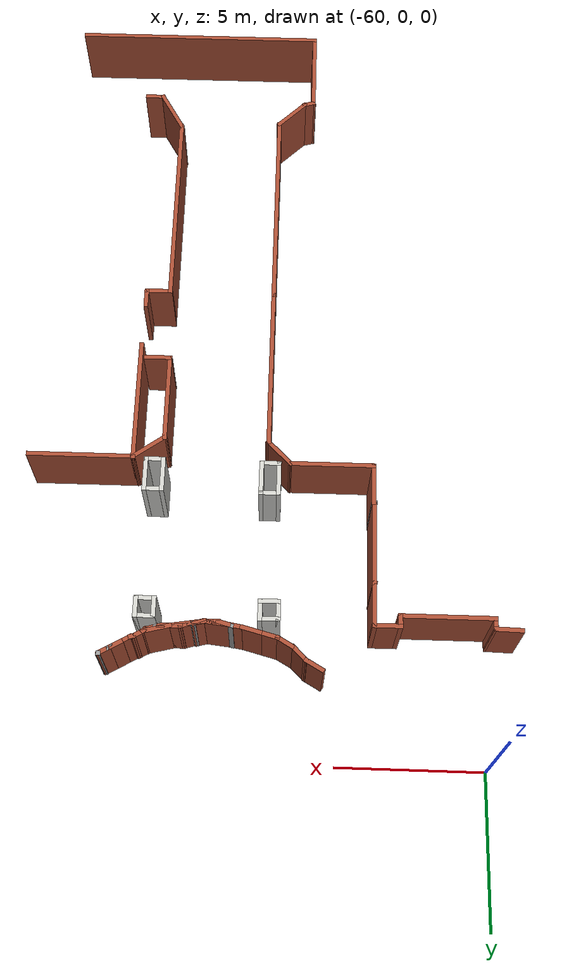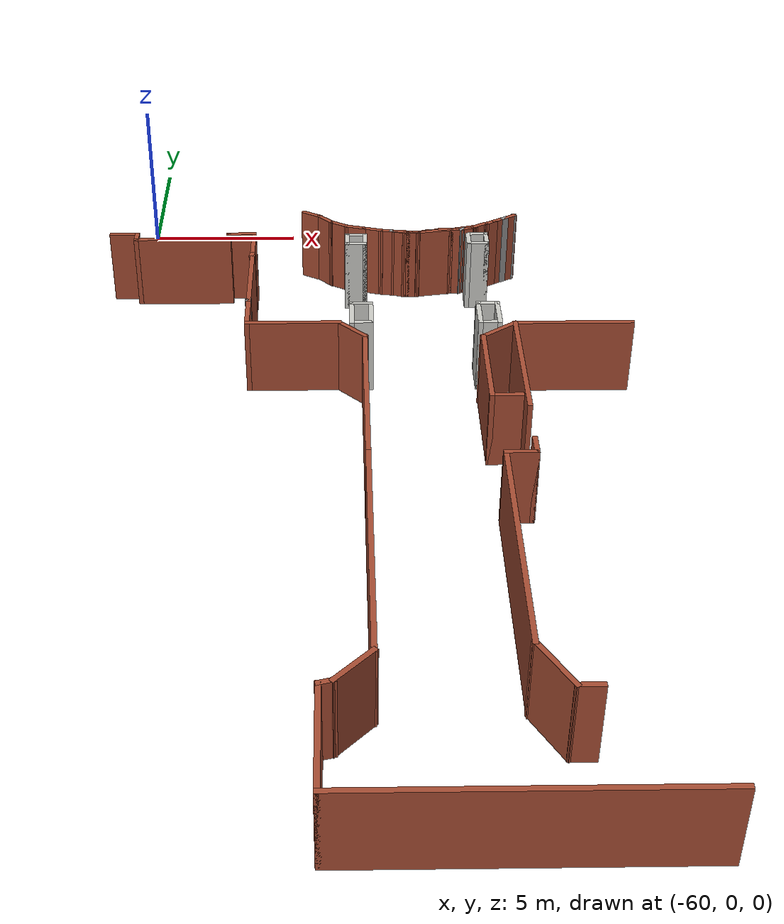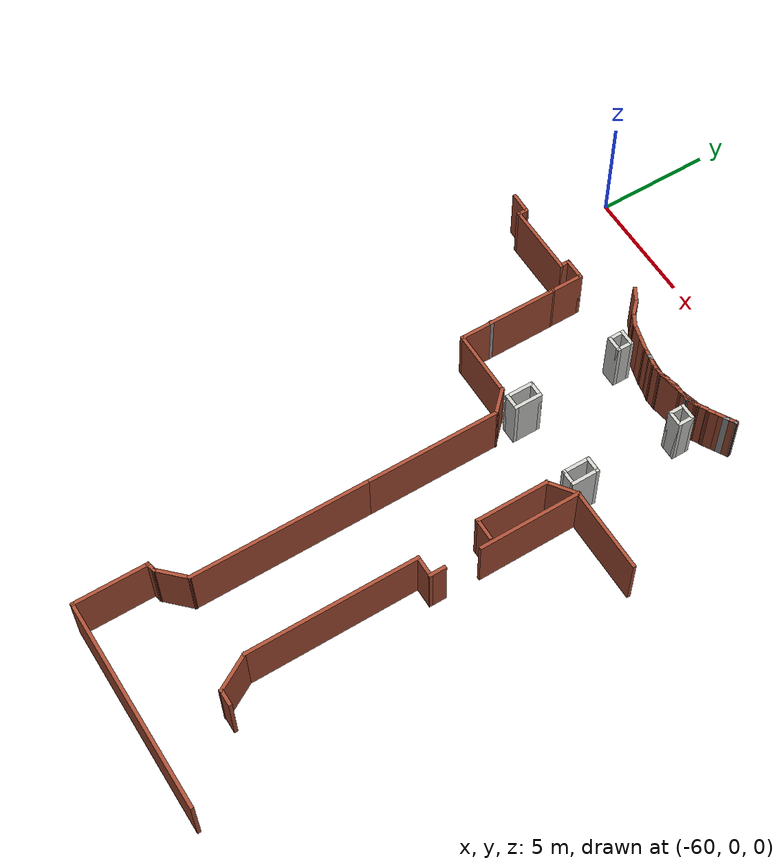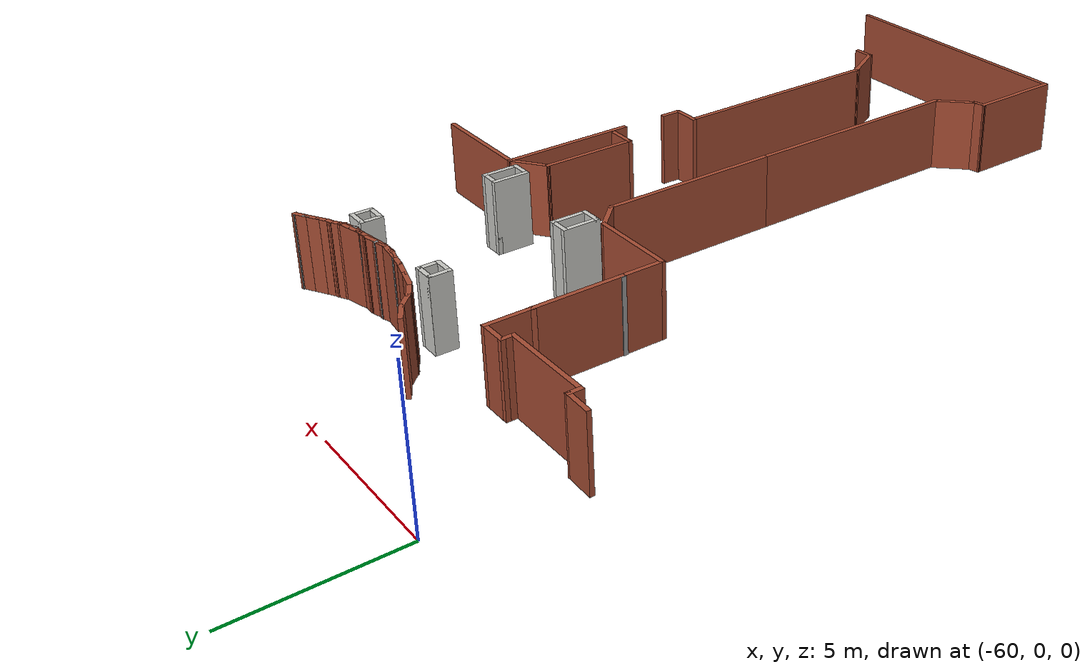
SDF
<sdf version="1.7">
 <model name="Planta1_TD">
  <pose>-6.73335 -7.75071 0 0 -0 0</pose>
  <link name="Wall_103">
   <collision name="Wall_103_Collision">
    <geometry><box><size>0.25 0.15 2.5</size></box></geometry>
    <pose>0 0 1.25 0 -0 0</pose>
   </collision>
   <visual name="Wall_103_Visual">
    <pose>0 0 1.25 0 -0 0</pose>
    <geometry><box><size>0.25 0.15 2.5</size></box></geometry>
    <material>
     <script><uri>file://media/materials/scripts/gazebo.material</uri><name>Gazebo/Bricks</name></script>
     <ambient>1 1 1 1</ambient>
    </material>
    <meta><layer>0</layer></meta>
   </visual>
   <pose>-41.9705 3.97081 0 0 -0 0.785398</pose>
  </link>
  <link name="Wall_104">
   <collision name="Wall_104_Collision">
    <geometry><box><size>0.5 0.15 2.5</size></box></geometry>
    <pose>0 0 1.25 0 -0 0</pose>
   </collision>
   <visual name="Wall_104_Visual">
    <pose>0 0 1.25 0 -0 0</pose>
    <geometry><box><size>0.5 0.15 2.5</size></box></geometry>
    <material>
     <script><uri>file://media/materials/scripts/gazebo.material</uri><name>Gazebo/Bricks</name></script>
     <ambient>1 1 1 1</ambient>
    </material>
    <meta><layer>0</layer></meta>
   </visual>
   <pose>-41.7836 4.09367 0 0 -0 0.523599</pose>
  </link>
  <link name="Wall_105">
   <collision name="Wall_105_Collision">
    <geometry><box><size>0.25 0.15 2.5</size></box></geometry>
    <pose>0 0 1.25 0 -0 0</pose>
   </collision>
   <visual name="Wall_105_Visual">
    <pose>0 0 1.25 0 -0 0</pose>
    <geometry><box><size>0.25 0.15 2.5</size></box></geometry>
    <material>
     <script><uri>file://media/materials/scripts/gazebo.material</uri><name>Gazebo/Bricks</name></script>
     <ambient>1 1 1 1</ambient>
    </material>
    <meta><layer>0</layer></meta>
   </visual>
   <pose>-41.5837 4.19411 0 0 -0 0.261799</pose>
  </link>
  <link name="Wall_106">
   <collision name="Wall_106_Collision">
    <geometry><box><size>0.5 0.15 2.5</size></box></geometry>
    <pose>0 0 1.25 0 -0 0</pose>
   </collision>
   <visual name="Wall_106_Visual">
    <pose>0 0 1.25 0 -0 0</pose>
    <geometry><box><size>0.5 0.15 2.5</size></box></geometry>
    <material>
     <script><uri>file://media/materials/scripts/gazebo.material</uri><name>Gazebo/Bricks</name></script>
     <ambient>1 1 1 1</ambient>
    </material>
    <meta><layer>0</layer></meta>
   </visual>
   <pose>-41.3839 4.29455 0 0 -0 0.523599</pose>
  </link>
  <link name="Wall_107">
   <collision name="Wall_107_Collision">
    <geometry><box><size>0.5 0.15 2.5</size></box></geometry>
    <pose>0 0 1.25 0 -0 0</pose>
   </collision>
   <visual name="Wall_107_Visual">
    <pose>0 0 1.25 0 -0 0</pose>
    <geometry><box><size>0.5 0.15 2.5</size></box></geometry>
    <material>
     <script><uri>file://media/materials/scripts/gazebo.material</uri><name>Gazebo/Bricks</name></script>
     <ambient>1 1 1 1</ambient>
    </material>
    <meta><layer>0</layer></meta>
   </visual>
   <pose>-41.0808 4.46955 0 0 -0 0.523599</pose>
  </link>
  <link name="Wall_108">
   <collision name="Wall_108_Collision">
    <geometry><box><size>0.25 0.15 2.5</size></box></geometry>
    <pose>0 0 1.25 0 -0 0</pose>
   </collision>
   <visual name="Wall_108_Visual">
    <pose>0 0 1.25 0 -0 0</pose>
    <geometry><box><size>0.25 0.15 2.5</size></box></geometry>
    <material>
     <script><uri>file://media/materials/scripts/gazebo.material</uri><name>Gazebo/Grey</name></script>
     <ambient>1 1 1 1</ambient>
    </material>
    <meta><layer>0</layer></meta>
   </visual>
   <pose>-40.8859 4.58205 0 0 -0 0.523599</pose>
  </link>
  <link name="Wall_109">
   <collision name="Wall_109_Collision">
    <geometry><box><size>0.5 0.15 2.5</size></box></geometry>
    <pose>0 0 1.25 0 -0 0</pose>
   </collision>
   <visual name="Wall_109_Visual">
    <pose>0 0 1.25 0 -0 0</pose>
    <geometry><box><size>0.5 0.15 2.5</size></box></geometry>
    <material>
     <script><uri>file://media/materials/scripts/gazebo.material</uri><name>Gazebo/Bricks</name></script>
     <ambient>1 1 1 1</ambient>
    </material>
    <meta><layer>0</layer></meta>
   </visual>
   <pose>-40.6911 4.69455 0 0 -0 0.523599</pose>
  </link>
  <link name="Wall_110">
   <collision name="Wall_110_Collision">
    <geometry><box><size>0.15 0.15 2.5</size></box></geometry>
    <pose>0 0 1.25 0 -0 0</pose>
   </collision>
   <visual name="Wall_110_Visual">
    <pose>0 0 1.25 0 -0 0</pose>
    <geometry><box><size>0.15 0.15 2.5</size></box></geometry>
    <material>
     <script><uri>file://media/materials/scripts/gazebo.material</uri><name>Gazebo/Grey</name></script>
     <ambient>1 1 1 1</ambient>
    </material>
    <meta><layer>0</layer></meta>
   </visual>
   <pose>-40.5395 4.78205 0 0 -0 0</pose>
  </link>
  <link name="Wall_147">
   <collision name="Wall_147_Collision">
    <geometry><box><size>0.943263 0.15 2.5</size></box></geometry>
    <pose>0 0 1.25 0 -0 0</pose>
   </collision>
   <visual name="Wall_147_Visual">
    <pose>0 0 1.25 0 -0 0</pose>
    <geometry><box><size>0.943263 0.15 2.5</size></box></geometry>
    <material>
     <script><uri>file://media/materials/scripts/gazebo.material</uri><name>Gazebo/Bricks</name></script>
     <ambient>1 1 1 1</ambient>
    </material>
    <meta><layer>0</layer></meta>
   </visual>
   <pose>-44.3007 3.65899 0 0 -0 -0.114445</pose>
  </link>
  <link name="Wall_148">
   <collision name="Wall_148_Collision">
    <geometry><box><size>1.29063 0.15 2.5</size></box></geometry>
    <pose>0 0 1.25 0 -0 0</pose>
   </collision>
   <visual name="Wall_148_Visual">
    <pose>0 0 1.25 0 -0 0</pose>
    <geometry><box><size>1.29063 0.15 2.5</size></box></geometry>
    <material>
     <script><uri>file://media/materials/scripts/gazebo.material</uri><name>Gazebo/Bricks</name></script>
     <ambient>1 1 1 1</ambient>
    </material>
    <meta><layer>0</layer></meta>
   </visual>
   <pose>-43.3436 3.70428 0 0 -0 0.159512</pose>
  </link>
  <link name="Wall_149">
   <collision name="Wall_149_Collision">
    <geometry><box><size>1.02139 0.15 2.5</size></box></geometry>
    <pose>0 0 1.25 0 -0 0</pose>
   </collision>
   <visual name="Wall_149_Visual">
    <pose>0 0 1.25 0 -0 0</pose>
    <geometry><box><size>1.02139 0.15 2.5</size></box></geometry>
    <material>
     <script><uri>file://media/materials/scripts/gazebo.material</uri><name>Gazebo/Bricks</name></script>
     <ambient>1 1 1 1</ambient>
    </material>
    <meta><layer>0</layer></meta>
   </visual>
   <pose>-42.3578 3.90052 0 0 -0 0.244924</pose>
  </link>
  <link name="Wall_153">
   <collision name="Wall_153_Collision">
    <geometry><box><size>0.75 0.15 2.5</size></box></geometry>
    <pose>0 0 1.25 0 -0 0</pose>
   </collision>
   <visual name="Wall_153_Visual">
    <pose>0 0 1.25 0 -0 0</pose>
    <geometry><box><size>0.75 0.15 2.5</size></box></geometry>
    <material>
     <script><uri>file://media/materials/scripts/gazebo.material</uri><name>Gazebo/Bricks</name></script>
     <ambient>1 1 1 1</ambient>
    </material>
    <meta><layer>0</layer></meta>
   </visual>
   <pose>-47.5103 4.96389 0 0 -0 -0.523599</pose>
  </link>
  <link name="Wall_154">
   <collision name="Wall_154_Collision">
    <geometry><box><size>0.75 0.15 2.5</size></box></geometry>
    <pose>0 0 1.25 0 -0 0</pose>
   </collision>
   <visual name="Wall_154_Visual">
    <pose>0 0 1.25 0 -0 0</pose>
    <geometry><box><size>0.75 0.15 2.5</size></box></geometry>
    <material>
     <script><uri>file://media/materials/scripts/gazebo.material</uri><name>Gazebo/Bricks</name></script>
     <ambient>1 1 1 1</ambient>
    </material>
    <meta><layer>0</layer></meta>
   </visual>
   <pose>-47.0383 4.60175 0 0 -0 -0.785398</pose>
  </link>
  <link name="Wall_155">
   <collision name="Wall_155_Collision">
    <geometry><box><size>0.75 0.15 2.5</size></box></geometry>
    <pose>0 0 1.25 0 -0 0</pose>
   </collision>
   <visual name="Wall_155_Visual">
    <pose>0 0 1.25 0 -0 0</pose>
    <geometry><box><size>0.75 0.15 2.5</size></box></geometry>
    <material>
     <script><uri>file://media/materials/scripts/gazebo.material</uri><name>Gazebo/Bricks</name></script>
     <ambient>1 1 1 1</ambient>
    </material>
    <meta><layer>0</layer></meta>
   </visual>
   <pose>-46.5664 4.23962 0 0 -0 -0.523599</pose>
  </link>
  <link name="Wall_156">
   <collision name="Wall_156_Collision">
    <geometry><box><size>0.75 0.15 2.5</size></box></geometry>
    <pose>0 0 1.25 0 -0 0</pose>
   </collision>
   <visual name="Wall_156_Visual">
    <pose>0 0 1.25 0 -0 0</pose>
    <geometry><box><size>0.75 0.15 2.5</size></box></geometry>
    <material>
     <script><uri>file://media/materials/scripts/gazebo.material</uri><name>Gazebo/Bricks</name></script>
     <ambient>1 1 1 1</ambient>
    </material>
    <meta><layer>0</layer></meta>
   </visual>
   <pose>-46.0168 4.01197 0 0 -0 -0.261799</pose>
  </link>
  <link name="Wall_157">
   <collision name="Wall_157_Collision">
    <geometry><box><size>0.75 0.15 2.5</size></box></geometry>
    <pose>0 0 1.25 0 -0 0</pose>
   </collision>
   <visual name="Wall_157_Visual">
    <pose>0 0 1.25 0 -0 0</pose>
    <geometry><box><size>0.75 0.15 2.5</size></box></geometry>
    <material>
     <script><uri>file://media/materials/scripts/gazebo.material</uri><name>Gazebo/Bricks</name></script>
     <ambient>1 1 1 1</ambient>
    </material>
    <meta><layer>0</layer></meta>
   </visual>
   <pose>-45.4372 3.85668 0 0 -0 -0.261799</pose>
  </link>
  <link name="Wall_158">
   <collision name="Wall_158_Collision">
    <geometry><box><size>0.608853 0.15 2.5</size></box></geometry>
    <pose>0 0 1.25 0 -0 0</pose>
   </collision>
   <visual name="Wall_158_Visual">
    <pose>0 0 1.25 0 -0 0</pose>
    <geometry><box><size>0.608853 0.15 2.5</size></box></geometry>
    <material>
     <script><uri>file://media/materials/scripts/gazebo.material</uri><name>Gazebo/Bricks</name></script>
     <ambient>1 1 1 1</ambient>
    </material>
    <meta><layer>0</layer></meta>
   </visual>
   <pose>-44.9211 3.74166 0 0 -0 -0.163648</pose>
  </link>
  <link name="Wall_2">
   <collision name="Wall_2_Collision">
    <geometry><box><size>4.5 0.15 2.5</size></box></geometry>
    <pose>0 0 1.25 0 -0 0</pose>
   </collision>
   <visual name="Wall_2_Visual">
    <pose>0 0 1.25 0 -0 0</pose>
    <geometry><box><size>4.5 0.15 2.5</size></box></geometry>
    <material>
     <script><uri>file://media/materials/scripts/gazebo.material</uri><name>Gazebo/Bricks</name></script>
     <ambient>1 1 1 1</ambient>
    </material>
    <meta><layer>0</layer></meta>
   </visual>
   <pose>-41.1626 -4.33103 0 0 -0 1.5708</pose>
  </link>
  <link name="Wall_207">
   <collision name="Wall_207_Collision">
    <geometry><box><size>1.25 0.15 2.5</size></box></geometry>
    <pose>0 0 1.25 0 -0 0</pose>
   </collision>
   <visual name="Wall_207_Visual">
    <pose>0 0 1.25 0 -0 0</pose>
    <geometry><box><size>1.25 0.15 2.5</size></box></geometry>
    <material>
     <script><uri>file://media/materials/scripts/gazebo.material</uri><name>Gazebo/CeilingTiled</name></script>
     <ambient>1 1 1 1</ambient>
    </material>
    <meta><layer>0</layer></meta>
   </visual>
   <pose>-42.2198 -1.5338 0 0 -0 -1.5708</pose>
  </link>
  <link name="Wall_208">
   <collision name="Wall_208_Collision">
    <geometry><box><size>0.75 0.15 2.5</size></box></geometry>
    <pose>0 0 1.25 0 -0 0</pose>
   </collision>
   <visual name="Wall_208_Visual">
    <pose>0 0 1.25 0 -0 0</pose>
    <geometry><box><size>0.75 0.15 2.5</size></box></geometry>
    <material>
     <script><uri>file://media/materials/scripts/gazebo.material</uri><name>Gazebo/CeilingTiled</name></script>
     <ambient>1 1 1 1</ambient>
    </material>
    <meta><layer>0</layer></meta>
   </visual>
   <pose>-41.9198 -2.0838 0 0 -0 0</pose>
  </link>
  <link name="Wall_209">
   <collision name="Wall_209_Collision">
    <geometry><box><size>1.25 0.15 2.5</size></box></geometry>
    <pose>0 0 1.25 0 -0 0</pose>
   </collision>
   <visual name="Wall_209_Visual">
    <pose>0 0 1.25 0 -0 0</pose>
    <geometry><box><size>1.25 0.15 2.5</size></box></geometry>
    <material>
     <script><uri>file://media/materials/scripts/gazebo.material</uri><name>Gazebo/CeilingTiled</name></script>
     <ambient>1 1 1 1</ambient>
    </material>
    <meta><layer>0</layer></meta>
   </visual>
   <pose>-41.6198 -1.5338 0 0 -0 1.5708</pose>
  </link>
  <link name="Wall_210">
   <collision name="Wall_210_Collision">
    <geometry><box><size>0.75 0.15 2.5</size></box></geometry>
    <pose>0 0 1.25 0 -0 0</pose>
   </collision>
   <visual name="Wall_210_Visual">
    <pose>0 0 1.25 0 -0 0</pose>
    <geometry><box><size>0.75 0.15 2.5</size></box></geometry>
    <material>
     <script><uri>file://media/materials/scripts/gazebo.material</uri><name>Gazebo/CeilingTiled</name></script>
     <ambient>1 1 1 1</ambient>
    </material>
    <meta><layer>0</layer></meta>
   </visual>
   <pose>-41.9198 -0.983803 0 0 -0 3.14159</pose>
  </link>
  <link name="Wall_212">
   <collision name="Wall_212_Collision">
    <geometry><box><size>0.75 0.15 2.5</size></box></geometry>
    <pose>0 0 1.25 0 -0 0</pose>
   </collision>
   <visual name="Wall_212_Visual">
    <pose>0 0 1.25 0 -0 0</pose>
    <geometry><box><size>0.75 0.15 2.5</size></box></geometry>
    <material>
     <script><uri>file://media/materials/scripts/gazebo.material</uri><name>Gazebo/CeilingTiled</name></script>
     <ambient>1 1 1 1</ambient>
    </material>
    <meta><layer>0</layer></meta>
   </visual>
   <pose>-45.8945 -0.944253 0 0 -0 0</pose>
  </link>
  <link name="Wall_213">
   <collision name="Wall_213_Collision">
    <geometry><box><size>1.25 0.15 2.5</size></box></geometry>
    <pose>0 0 1.25 0 -0 0</pose>
   </collision>
   <visual name="Wall_213_Visual">
    <pose>0 0 1.25 0 -0 0</pose>
    <geometry><box><size>1.25 0.15 2.5</size></box></geometry>
    <material>
     <script><uri>file://media/materials/scripts/gazebo.material</uri><name>Gazebo/CeilingTiled</name></script>
     <ambient>1 1 1 1</ambient>
    </material>
    <meta><layer>0</layer></meta>
   </visual>
   <pose>-45.5945 -1.49425 0 0 -0 -1.5708</pose>
  </link>
  <link name="Wall_214">
   <collision name="Wall_214_Collision">
    <geometry><box><size>0.75 0.15 2.5</size></box></geometry>
    <pose>0 0 1.25 0 -0 0</pose>
   </collision>
   <visual name="Wall_214_Visual">
    <pose>0 0 1.25 0 -0 0</pose>
    <geometry><box><size>0.75 0.15 2.5</size></box></geometry>
    <material>
     <script><uri>file://media/materials/scripts/gazebo.material</uri><name>Gazebo/CeilingTiled</name></script>
     <ambient>1 1 1 1</ambient>
    </material>
    <meta><layer>0</layer></meta>
   </visual>
   <pose>-45.8945 -2.04425 0 0 -0 3.14159</pose>
  </link>
  <link name="Wall_215">
   <collision name="Wall_215_Collision">
    <geometry><box><size>1.25 0.15 2.5</size></box></geometry>
    <pose>0 0 1.25 0 -0 0</pose>
   </collision>
   <visual name="Wall_215_Visual">
    <pose>0 0 1.25 0 -0 0</pose>
    <geometry><box><size>1.25 0.15 2.5</size></box></geometry>
    <material>
     <script><uri>file://media/materials/scripts/gazebo.material</uri><name>Gazebo/CeilingTiled</name></script>
     <ambient>1 1 1 1</ambient>
    </material>
    <meta><layer>0</layer></meta>
   </visual>
   <pose>-46.1945 -1.49425 0 0 -0 1.5708</pose>
  </link>
  <link name="Wall_247">
   <collision name="Wall_247_Collision">
    <geometry><box><size>0.75 0.15 2.5</size></box></geometry>
    <pose>0 0 1.25 0 -0 0</pose>
   </collision>
   <visual name="Wall_247_Visual">
    <pose>0 0 1.25 0 -0 0</pose>
    <geometry><box><size>0.75 0.15 2.5</size></box></geometry>
    <material>
     <script><uri>file://media/materials/scripts/gazebo.material</uri><name>Gazebo/CeilingTiled</name></script>
     <ambient>1 1 1 1</ambient>
    </material>
    <meta><layer>0</layer></meta>
   </visual>
   <pose>-41.9226 3.4816 0 0 -0 0</pose>
  </link>
  <link name="Wall_248">
   <collision name="Wall_248_Collision">
    <geometry><box><size>0.75 0.15 2.5</size></box></geometry>
    <pose>0 0 1.25 0 -0 0</pose>
   </collision>
   <visual name="Wall_248_Visual">
    <pose>0 0 1.25 0 -0 0</pose>
    <geometry><box><size>0.75 0.15 2.5</size></box></geometry>
    <material>
     <script><uri>file://media/materials/scripts/gazebo.material</uri><name>Gazebo/CeilingTiled</name></script>
     <ambient>1 1 1 1</ambient>
    </material>
    <meta><layer>0</layer></meta>
   </visual>
   <pose>-41.6226 3.1816 0 0 -0 -1.5708</pose>
  </link>
  <link name="Wall_249">
   <collision name="Wall_249_Collision">
    <geometry><box><size>0.75 0.15 2.5</size></box></geometry>
    <pose>0 0 1.25 0 -0 0</pose>
   </collision>
   <visual name="Wall_249_Visual">
    <pose>0 0 1.25 0 -0 0</pose>
    <geometry><box><size>0.75 0.15 2.5</size></box></geometry>
    <material>
     <script><uri>file://media/materials/scripts/gazebo.material</uri><name>Gazebo/CeilingTiled</name></script>
     <ambient>1 1 1 1</ambient>
    </material>
    <meta><layer>0</layer></meta>
   </visual>
   <pose>-41.9226 2.8816 0 0 -0 3.14159</pose>
  </link>
  <link name="Wall_250">
   <collision name="Wall_250_Collision">
    <geometry><box><size>0.75 0.15 2.5</size></box></geometry>
    <pose>0 0 1.25 0 -0 0</pose>
   </collision>
   <visual name="Wall_250_Visual">
    <pose>0 0 1.25 0 -0 0</pose>
    <geometry><box><size>0.75 0.15 2.5</size></box></geometry>
    <material>
     <script><uri>file://media/materials/scripts/gazebo.material</uri><name>Gazebo/CeilingTiled</name></script>
     <ambient>1 1 1 1</ambient>
    </material>
    <meta><layer>0</layer></meta>
   </visual>
   <pose>-42.2226 3.1816 0 0 -0 1.5708</pose>
  </link>
  <link name="Wall_252">
   <collision name="Wall_252_Collision">
    <geometry><box><size>0.75 0.15 2.5</size></box></geometry>
    <pose>0 0 1.25 0 -0 0</pose>
   </collision>
   <visual name="Wall_252_Visual">
    <pose>0 0 1.25 0 -0 0</pose>
    <geometry><box><size>0.75 0.15 2.5</size></box></geometry>
    <material>
     <script><uri>file://media/materials/scripts/gazebo.material</uri><name>Gazebo/CeilingTiled</name></script>
     <ambient>1 1 1 1</ambient>
    </material>
    <meta><layer>0</layer></meta>
   </visual>
   <pose>-46.0047 3.473 0 0 -0 3.14159</pose>
  </link>
  <link name="Wall_253">
   <collision name="Wall_253_Collision">
    <geometry><box><size>0.75 0.15 2.5</size></box></geometry>
    <pose>0 0 1.25 0 -0 0</pose>
   </collision>
   <visual name="Wall_253_Visual">
    <pose>0 0 1.25 0 -0 0</pose>
    <geometry><box><size>0.75 0.15 2.5</size></box></geometry>
    <material>
     <script><uri>file://media/materials/scripts/gazebo.material</uri><name>Gazebo/CeilingTiled</name></script>
     <ambient>1 1 1 1</ambient>
    </material>
    <meta><layer>0</layer></meta>
   </visual>
   <pose>-46.3047 3.173 0 0 -0 -1.5708</pose>
  </link>
  <link name="Wall_254">
   <collision name="Wall_254_Collision">
    <geometry><box><size>0.75 0.15 2.5</size></box></geometry>
    <pose>0 0 1.25 0 -0 0</pose>
   </collision>
   <visual name="Wall_254_Visual">
    <pose>0 0 1.25 0 -0 0</pose>
    <geometry><box><size>0.75 0.15 2.5</size></box></geometry>
    <material>
     <script><uri>file://media/materials/scripts/gazebo.material</uri><name>Gazebo/CeilingTiled</name></script>
     <ambient>1 1 1 1</ambient>
    </material>
    <meta><layer>0</layer></meta>
   </visual>
   <pose>-46.0047 2.873 0 0 -0 0</pose>
  </link>
  <link name="Wall_255">
   <collision name="Wall_255_Collision">
    <geometry><box><size>0.75 0.15 2.5</size></box></geometry>
    <pose>0 0 1.25 0 -0 0</pose>
   </collision>
   <visual name="Wall_255_Visual">
    <pose>0 0 1.25 0 -0 0</pose>
    <geometry><box><size>0.75 0.15 2.5</size></box></geometry>
    <material>
     <script><uri>file://media/materials/scripts/gazebo.material</uri><name>Gazebo/CeilingTiled</name></script>
     <ambient>1 1 1 1</ambient>
    </material>
    <meta><layer>0</layer></meta>
   </visual>
   <pose>-45.7047 3.173 0 0 -0 1.5708</pose>
  </link>
  <link name="Wall_27">
   <collision name="Wall_27_Collision">
    <geometry><box><size>0.75 0.15 2.5</size></box></geometry>
    <pose>0 0 1.25 0 -0 0</pose>
   </collision>
   <visual name="Wall_27_Visual">
    <pose>0 0 1.25 0 -0 0</pose>
    <geometry><box><size>0.75 0.15 2.5</size></box></geometry>
    <material>
     <script><uri>file://media/materials/scripts/gazebo.material</uri><name>Gazebo/Bricks</name></script>
     <ambient>1 1 1 1</ambient>
    </material>
    <meta><layer>0</layer></meta>
   </visual>
   <pose>-41.1968 -8.42368 0 0 -0 -1.5708</pose>
  </link>
  <link name="Wall_28">
   <collision name="Wall_28_Collision">
    <geometry><box><size>1 0.15 2.5</size></box></geometry>
    <pose>0 0 1.25 0 -0 0</pose>
   </collision>
   <visual name="Wall_28_Visual">
    <pose>0 0 1.25 0 -0 0</pose>
    <geometry><box><size>1 0.15 2.5</size></box></geometry>
    <material>
     <script><uri>file://media/materials/scripts/gazebo.material</uri><name>Gazebo/Bricks</name></script>
     <ambient>1 1 1 1</ambient>
    </material>
    <meta><layer>0</layer></meta>
   </visual>
   <pose>-41.6218 -8.72368 0 0 -0 3.14159</pose>
  </link>
  <link name="Wall_3">
   <collision name="Wall_3_Collision">
    <geometry><box><size>3.75 0.15 2.5</size></box></geometry>
    <pose>0 0 1.25 0 -0 0</pose>
   </collision>
   <visual name="Wall_3_Visual">
    <pose>0 0 1.25 0 -0 0</pose>
    <geometry><box><size>3.75 0.15 2.5</size></box></geometry>
    <material>
     <script><uri>file://media/materials/scripts/gazebo.material</uri><name>Gazebo/Bricks</name></script>
     <ambient>1 1 1 1</ambient>
    </material>
    <meta><layer>0</layer></meta>
   </visual>
   <pose>-39.3626 -2.15603 0 0 -0 0</pose>
  </link>
  <link name="Wall_32">
   <collision name="Wall_32_Collision">
    <geometry><box><size>7.5 0.15 2.5</size></box></geometry>
    <pose>0 0 1.25 0 -0 0</pose>
   </collision>
   <visual name="Wall_32_Visual">
    <pose>0 0 1.25 0 -0 0</pose>
    <geometry><box><size>7.5 0.15 2.5</size></box></geometry>
    <material>
     <script><uri>file://media/materials/scripts/gazebo.material</uri><name>Gazebo/Bricks</name></script>
     <ambient>1 1 1 1</ambient>
    </material>
    <meta><layer>0</layer></meta>
   </visual>
   <pose>-42.0468 -12.3987 0 0 -0 -1.5708</pose>
  </link>
  <link name="Wall_33">
   <collision name="Wall_33_Collision">
    <geometry><box><size>1.75 0.15 2.5</size></box></geometry>
    <pose>0 0 1.25 0 -0 0</pose>
   </collision>
   <visual name="Wall_33_Visual">
    <pose>0 0 1.25 0 -0 0</pose>
    <geometry><box><size>1.75 0.15 2.5</size></box></geometry>
    <material>
     <script><uri>file://media/materials/scripts/gazebo.material</uri><name>Gazebo/Bricks</name></script>
     <ambient>1 1 1 1</ambient>
    </material>
    <meta><layer>0</layer></meta>
   </visual>
   <pose>-41.6468 -16.7665 0 0 -0 -1.0472</pose>
  </link>
  <link name="Wall_34">
   <collision name="Wall_34_Collision">
    <geometry><box><size>0.75 0.15 2.5</size></box></geometry>
    <pose>0 0 1.25 0 -0 0</pose>
   </collision>
   <visual name="Wall_34_Visual">
    <pose>0 0 1.25 0 -0 0</pose>
    <geometry><box><size>0.75 0.15 2.5</size></box></geometry>
    <material>
     <script><uri>file://media/materials/scripts/gazebo.material</uri><name>Gazebo/Bricks</name></script>
     <ambient>1 1 1 1</ambient>
    </material>
    <meta><layer>0</layer></meta>
   </visual>
   <pose>-40.9468 -17.4593 0 0 -0 0</pose>
  </link>
  <link name="Wall_36">
   <collision name="Wall_36_Collision">
    <geometry><box><size>7.75 0.15 2.5</size></box></geometry>
    <pose>0 0 1.25 0 -0 0</pose>
   </collision>
   <visual name="Wall_36_Visual">
    <pose>0 0 1.25 0 -0 0</pose>
    <geometry><box><size>7.75 0.15 2.5</size></box></geometry>
    <material>
     <script><uri>file://media/materials/scripts/gazebo.material</uri><name>Gazebo/Bricks</name></script>
     <ambient>1 1 1 1</ambient>
    </material>
    <meta><layer>0</layer></meta>
   </visual>
   <pose>-45.8057 -12.4812 0 0 -0 -1.5708</pose>
  </link>
  <link name="Wall_37">
   <collision name="Wall_37_Collision">
    <geometry><box><size>1.5 0.15 2.5</size></box></geometry>
    <pose>0 0 1.25 0 -0 0</pose>
   </collision>
   <visual name="Wall_37_Visual">
    <pose>0 0 1.25 0 -0 0</pose>
    <geometry><box><size>1.5 0.15 2.5</size></box></geometry>
    <material>
     <script><uri>file://media/materials/scripts/gazebo.material</uri><name>Gazebo/Bricks</name></script>
     <ambient>1 1 1 1</ambient>
    </material>
    <meta><layer>0</layer></meta>
   </visual>
   <pose>-46.283 -16.7585 0 0 -0 -2.35619</pose>
  </link>
  <link name="Wall_39">
   <collision name="Wall_39_Collision">
    <geometry><box><size>0.5 0.15 2.5</size></box></geometry>
    <pose>0 0 1.25 0 -0 0</pose>
   </collision>
   <visual name="Wall_39_Visual">
    <pose>0 0 1.25 0 -0 0</pose>
    <geometry><box><size>0.5 0.15 2.5</size></box></geometry>
    <material>
     <script><uri>file://media/materials/scripts/gazebo.material</uri><name>Gazebo/Bricks</name></script>
     <ambient>1 1 1 1</ambient>
    </material>
    <meta><layer>0</layer></meta>
   </visual>
   <pose>-46.9294 -17.2811 0 0 -0 -2.87979</pose>
  </link>
  <link name="Wall_40">
   <collision name="Wall_40_Collision">
    <geometry><box><size>3.25 0.15 2.5</size></box></geometry>
    <pose>0 0 1.25 0 -0 0</pose>
   </collision>
   <visual name="Wall_40_Visual">
    <pose>0 0 1.25 0 -0 0</pose>
    <geometry><box><size>3.25 0.15 2.5</size></box></geometry>
    <material>
     <script><uri>file://media/materials/scripts/gazebo.material</uri><name>Gazebo/Bricks</name></script>
     <ambient>1 1 1 1</ambient>
    </material>
    <meta><layer>0</layer></meta>
   </visual>
   <pose>-47.0984 -18.8764 0 0 -0 -1.5708</pose>
  </link>
  <link name="Wall_41">
   <collision name="Wall_41_Collision">
    <geometry><box><size>9.25 0.15 2.5</size></box></geometry>
    <pose>0 0 1.25 0 -0 0</pose>
   </collision>
   <visual name="Wall_41_Visual">
    <pose>0 0 1.25 0 -0 0</pose>
    <geometry><box><size>9.25 0.15 2.5</size></box></geometry>
    <material>
     <script><uri>file://media/materials/scripts/gazebo.material</uri><name>Gazebo/Bricks</name></script>
     <ambient>1 1 1 1</ambient>
    </material>
    <meta><layer>0</layer></meta>
   </visual>
   <pose>-42.5484 -20.4264 0 0 -0 0</pose>
  </link>
  <link name="Wall_44">
   <collision name="Wall_44_Collision">
    <geometry><box><size>6 0.15 2.5</size></box></geometry>
    <pose>0 0 1.25 0 -0 0</pose>
   </collision>
   <visual name="Wall_44_Visual">
    <pose>0 0 1.25 0 -0 0</pose>
    <geometry><box><size>6 0.15 2.5</size></box></geometry>
    <material>
     <script><uri>file://media/materials/scripts/gazebo.material</uri><name>Gazebo/Bricks</name></script>
     <ambient>1 1 1 1</ambient>
    </material>
    <meta><layer>0</layer></meta>
   </visual>
   <pose>-45.8057 -5.75622 0 0 -0 1.5708</pose>
  </link>
  <link name="Wall_45">
   <collision name="Wall_45_Collision">
    <geometry><box><size>1.25 0.15 2.5</size></box></geometry>
    <pose>0 0 1.25 0 -0 0</pose>
   </collision>
   <visual name="Wall_45_Visual">
    <pose>0 0 1.25 0 -0 0</pose>
    <geometry><box><size>1.25 0.15 2.5</size></box></geometry>
    <material>
     <script><uri>file://media/materials/scripts/gazebo.material</uri><name>Gazebo/Bricks</name></script>
     <ambient>1 1 1 1</ambient>
    </material>
    <meta><layer>0</layer></meta>
   </visual>
   <pose>-46.1946 -2.44231 0 0 -0 2.35619</pose>
  </link>
  <link name="Wall_46">
   <collision name="Wall_46_Collision">
    <geometry><box><size>3 0.15 2.5</size></box></geometry>
    <pose>0 0 1.25 0 -0 0</pose>
   </collision>
   <visual name="Wall_46_Visual">
    <pose>0 0 1.25 0 -0 0</pose>
    <geometry><box><size>3 0.15 2.5</size></box></geometry>
    <material>
     <script><uri>file://media/materials/scripts/gazebo.material</uri><name>Gazebo/Bricks</name></script>
     <ambient>1 1 1 1</ambient>
    </material>
    <meta><layer>0</layer></meta>
   </visual>
   <pose>-48.0085 -2.0534 0 0 -0 3.14159</pose>
  </link>
  <link name="Wall_47">
   <collision name="Wall_47_Collision">
    <geometry><box><size>1.5 0.15 2.5</size></box></geometry>
    <pose>0 0 1.25 0 -0 0</pose>
   </collision>
   <visual name="Wall_47_Visual">
    <pose>0 0 1.25 0 -0 0</pose>
    <geometry><box><size>1.5 0.15 2.5</size></box></geometry>
    <material>
     <script><uri>file://media/materials/scripts/gazebo.material</uri><name>Gazebo/Bricks</name></script>
     <ambient>1 1 1 1</ambient>
    </material>
    <meta><layer>0</layer></meta>
   </visual>
   <pose>-49.4335 -1.3784 0 0 -0 1.5708</pose>
  </link>
  <link name="Wall_48">
   <collision name="Wall_48_Collision">
    <geometry><box><size>0.1826 0.15 2.5</size></box></geometry>
    <pose>0 0 1.25 0 -0 0</pose>
   </collision>
   <visual name="Wall_48_Visual">
    <pose>0 0 1.25 0 -0 0</pose>
    <geometry><box><size>0.1826 0.15 2.5</size></box></geometry>
    <material>
     <script><uri>file://media/materials/scripts/gazebo.material</uri><name>Gazebo/Grey</name></script>
     <ambient>1 1 1 1</ambient>
    </material>
    <meta><layer>0</layer></meta>
   </visual>
   <pose>-49.4498 -0.703402 0 0 -0 3.14159</pose>
  </link>
  <link name="Wall_50">
   <collision name="Wall_50_Collision">
    <geometry><box><size>3 0.15 2.5</size></box></geometry>
    <pose>0 0 1.25 0 -0 0</pose>
   </collision>
   <visual name="Wall_50_Visual">
    <pose>0 0 1.25 0 -0 0</pose>
    <geometry><box><size>3 0.15 2.5</size></box></geometry>
    <material>
     <script><uri>file://media/materials/scripts/gazebo.material</uri><name>Gazebo/Bricks</name></script>
     <ambient>1 1 1 1</ambient>
    </material>
    <meta><layer>0</layer></meta>
   </visual>
   <pose>-49.4397 0.721599 0 0 -0 1.5708</pose>
  </link>
  <link name="Wall_51">
   <collision name="Wall_51_Collision">
    <geometry><box><size>0.242916 0.15 2.5</size></box></geometry>
    <pose>0 0 1.25 0 -0 0</pose>
   </collision>
   <visual name="Wall_51_Visual">
    <pose>0 0 1.25 0 -0 0</pose>
    <geometry><box><size>0.242916 0.15 2.5</size></box></geometry>
    <material>
     <script><uri>file://media/materials/scripts/gazebo.material</uri><name>Gazebo/Bricks</name></script>
     <ambient>1 1 1 1</ambient>
    </material>
    <meta><layer>0</layer></meta>
   </visual>
   <pose>-49.4558 2.19189 0 0 -0 1.34641</pose>
  </link>
  <link name="Wall_52">
   <collision name="Wall_52_Collision">
    <geometry><box><size>1.5 0.15 2.5</size></box></geometry>
    <pose>0 0 1.25 0 -0 0</pose>
   </collision>
   <visual name="Wall_52_Visual">
    <pose>0 0 1.25 0 -0 0</pose>
    <geometry><box><size>1.5 0.15 2.5</size></box></geometry>
    <material>
     <script><uri>file://media/materials/scripts/gazebo.material</uri><name>Gazebo/Bricks</name></script>
     <ambient>1 1 1 1</ambient>
    </material>
    <meta><layer>0</layer></meta>
   </visual>
   <pose>-49.4455 2.91219 0 0 -0 1.5708</pose>
  </link>
  <link name="Wall_53">
   <collision name="Wall_53_Collision">
    <geometry><box><size>1 0.15 2.5</size></box></geometry>
    <pose>0 0 1.25 0 -0 0</pose>
   </collision>
   <visual name="Wall_53_Visual">
    <pose>0 0 1.25 0 -0 0</pose>
    <geometry><box><size>1 0.15 2.5</size></box></geometry>
    <material>
     <script><uri>file://media/materials/scripts/gazebo.material</uri><name>Gazebo/Bricks</name></script>
     <ambient>1 1 1 1</ambient>
    </material>
    <meta><layer>0</layer></meta>
   </visual>
   <pose>-49.8705 3.58718 0 0 -0 3.14159</pose>
  </link>
  <link name="Wall_54">
   <collision name="Wall_54_Collision">
    <geometry><box><size>0.5 0.15 2.5</size></box></geometry>
    <pose>0 0 1.25 0 -0 0</pose>
   </collision>
   <visual name="Wall_54_Visual">
    <pose>0 0 1.25 0 -0 0</pose>
    <geometry><box><size>0.5 0.15 2.5</size></box></geometry>
    <material>
     <script><uri>file://media/materials/scripts/gazebo.material</uri><name>Gazebo/Bricks</name></script>
     <ambient>1 1 1 1</ambient>
    </material>
    <meta><layer>0</layer></meta>
   </visual>
   <pose>-50.2955 3.41219 0 0 -0 -1.5708</pose>
  </link>
  <link name="Wall_56">
   <collision name="Wall_56_Collision">
    <geometry><box><size>3.25 0.15 2.5</size></box></geometry>
    <pose>0 0 1.25 0 -0 0</pose>
   </collision>
   <visual name="Wall_56_Visual">
    <pose>0 0 1.25 0 -0 0</pose>
    <geometry><box><size>3.25 0.15 2.5</size></box></geometry>
    <material>
     <script><uri>file://media/materials/scripts/gazebo.material</uri><name>Gazebo/Bricks</name></script>
     <ambient>1 1 1 1</ambient>
    </material>
    <meta><layer>0</layer></meta>
   </visual>
   <pose>-51.8455 3.23719 0 0 -0 3.14159</pose>
  </link>
  <link name="Wall_57">
   <collision name="Wall_57_Collision">
    <geometry><box><size>0.5 0.15 2.5</size></box></geometry>
    <pose>0 0 1.25 0 -0 0</pose>
   </collision>
   <visual name="Wall_57_Visual">
    <pose>0 0 1.25 0 -0 0</pose>
    <geometry><box><size>0.5 0.15 2.5</size></box></geometry>
    <material>
     <script><uri>file://media/materials/scripts/gazebo.material</uri><name>Gazebo/Bricks</name></script>
     <ambient>1 1 1 1</ambient>
    </material>
    <meta><layer>0</layer></meta>
   </visual>
   <pose>-53.3955 3.41219 0 0 -0 1.5708</pose>
  </link>
  <link name="Wall_61">
   <collision name="Wall_61_Collision">
    <geometry><box><size>0.998604 0.15 2.5</size></box></geometry>
    <pose>0 0 1.25 0 -0 0</pose>
   </collision>
   <visual name="Wall_61_Visual">
    <pose>0 0 1.25 0 -0 0</pose>
    <geometry><box><size>0.998604 0.15 2.5</size></box></geometry>
    <material>
     <script><uri>file://media/materials/scripts/gazebo.material</uri><name>Gazebo/Bricks</name></script>
     <ambient>1 1 1 1</ambient>
    </material>
    <meta><layer>0</layer></meta>
   </visual>
   <pose>-53.8196 3.59988 0 0 -0 -0.029914</pose>
  </link>
  <link name="Wall_72">
   <collision name="Wall_72_Collision">
    <geometry><box><size>1 0.15 2.5</size></box></geometry>
    <pose>0 0 1.25 0 -0 0</pose>
   </collision>
   <visual name="Wall_72_Visual">
    <pose>0 0 1.25 0 -0 0</pose>
    <geometry><box><size>1 0.15 2.5</size></box></geometry>
    <material>
     <script><uri>file://media/materials/scripts/gazebo.material</uri><name>Gazebo/Bricks</name></script>
     <ambient>1 1 1 1</ambient>
    </material>
    <meta><layer>0</layer></meta>
   </visual>
   <pose>-41.7778 -6.00344 0 0 -0 3.14159</pose>
  </link>
  <link name="Wall_73">
   <collision name="Wall_73_Collision">
    <geometry><box><size>3.25 0.15 2.5</size></box></geometry>
    <pose>0 0 1.25 0 -0 0</pose>
   </collision>
   <visual name="Wall_73_Visual">
    <pose>0 0 1.25 0 -0 0</pose>
    <geometry><box><size>3.25 0.15 2.5</size></box></geometry>
    <material>
     <script><uri>file://media/materials/scripts/gazebo.material</uri><name>Gazebo/Bricks</name></script>
     <ambient>1 1 1 1</ambient>
    </material>
    <meta><layer>0</layer></meta>
   </visual>
   <pose>-42.2028 -4.45344 0 0 -0 1.5708</pose>
  </link>
  <link name="Wall_74">
   <collision name="Wall_74_Collision">
    <geometry><box><size>1.43093 0.15 2.5</size></box></geometry>
    <pose>0 0 1.25 0 -0 0</pose>
   </collision>
   <visual name="Wall_74_Visual">
    <pose>0 0 1.25 0 -0 0</pose>
    <geometry><box><size>1.43093 0.15 2.5</size></box></geometry>
    <material>
     <script><uri>file://media/materials/scripts/gazebo.material</uri><name>Gazebo/Bricks</name></script>
     <ambient>1 1 1 1</ambient>
    </material>
    <meta><layer>0</layer></meta>
   </visual>
   <pose>-41.6827 -2.52973 0 0 -0 0.623022</pose>
  </link>
  <link name="Wall_76">
   <collision name="Wall_76_Collision">
    <geometry><box><size>0.25 0.15 2.5</size></box></geometry>
    <pose>0 0 1.25 0 -0 0</pose>
   </collision>
   <visual name="Wall_76_Visual">
    <pose>0 0 1.25 0 -0 0</pose>
    <geometry><box><size>0.25 0.15 2.5</size></box></geometry>
    <material>
     <script><uri>file://media/materials/scripts/gazebo.material</uri><name>Gazebo/Grey</name></script>
     <ambient>1 1 1 1</ambient>
    </material>
    <meta><layer>0</layer></meta>
   </visual>
   <pose>-44.743 3.71722 0 0 -0 -0.261799</pose>
  </link>
  <link name="Wall_77">
   <collision name="Wall_77_Collision">
    <geometry><box><size>0.5 0.15 2.5</size></box></geometry>
    <pose>0 0 1.25 0 -0 0</pose>
   </collision>
   <visual name="Wall_77_Visual">
    <pose>0 0 1.25 0 -0 0</pose>
    <geometry><box><size>0.5 0.15 2.5</size></box></geometry>
    <material>
     <script><uri>file://media/materials/scripts/gazebo.material</uri><name>Gazebo/Bricks</name></script>
     <ambient>1 1 1 1</ambient>
    </material>
    <meta><layer>0</layer></meta>
   </visual>
   <pose>-44.5257 3.65899 0 0 -0 -0.261799</pose>
  </link>
  <link name="Wall_78">
   <collision name="Wall_78_Collision">
    <geometry><box><size>0.25 0.15 2.5</size></box></geometry>
    <pose>0 0 1.25 0 -0 0</pose>
   </collision>
   <visual name="Wall_78_Visual">
    <pose>0 0 1.25 0 -0 0</pose>
    <geometry><box><size>0.25 0.15 2.5</size></box></geometry>
    <material>
     <script><uri>file://media/materials/scripts/gazebo.material</uri><name>Gazebo/Bricks</name></script>
     <ambient>1 1 1 1</ambient>
    </material>
    <meta><layer>0</layer></meta>
   </visual>
   <pose>-44.3067 3.6137 0 0 -0 0</pose>
  </link>
  <link name="Wall_79">
   <collision name="Wall_79_Collision">
    <geometry><box><size>0.5 0.15 2.5</size></box></geometry>
    <pose>0 0 1.25 0 -0 0</pose>
   </collision>
   <visual name="Wall_79_Visual">
    <pose>0 0 1.25 0 -0 0</pose>
    <geometry><box><size>0.5 0.15 2.5</size></box></geometry>
    <material>
     <script><uri>file://media/materials/scripts/gazebo.material</uri><name>Gazebo/Bricks</name></script>
     <ambient>1 1 1 1</ambient>
    </material>
    <meta><layer>0</layer></meta>
   </visual>
   <pose>-44.0817 3.6137 0 0 -0 0</pose>
  </link>
  <link name="Wall_80">
   <collision name="Wall_80_Collision">
    <geometry><box><size>0.5 0.15 2.5</size></box></geometry>
    <pose>0 0 1.25 0 -0 0</pose>
   </collision>
   <visual name="Wall_80_Visual">
    <pose>0 0 1.25 0 -0 0</pose>
    <geometry><box><size>0.5 0.15 2.5</size></box></geometry>
    <material>
     <script><uri>file://media/materials/scripts/gazebo.material</uri><name>Gazebo/Bricks</name></script>
     <ambient>1 1 1 1</ambient>
    </material>
    <meta><layer>0</layer></meta>
   </visual>
   <pose>-43.7376 3.65899 0 0 -0 0.261799</pose>
  </link>
  <link name="Wall_81">
   <collision name="Wall_81_Collision">
    <geometry><box><size>0.25 0.15 2.5</size></box></geometry>
    <pose>0 0 1.25 0 -0 0</pose>
   </collision>
   <visual name="Wall_81_Visual">
    <pose>0 0 1.25 0 -0 0</pose>
    <geometry><box><size>0.25 0.15 2.5</size></box></geometry>
    <material>
     <script><uri>file://media/materials/scripts/gazebo.material</uri><name>Gazebo/Grey</name></script>
     <ambient>1 1 1 1</ambient>
    </material>
    <meta><layer>0</layer></meta>
   </visual>
   <pose>-43.5186 3.70428 0 0 -0 0</pose>
  </link>
  <link name="Wall_82">
   <collision name="Wall_82_Collision">
    <geometry><box><size>0.5 0.15 2.5</size></box></geometry>
    <pose>0 0 1.25 0 -0 0</pose>
   </collision>
   <visual name="Wall_82_Visual">
    <pose>0 0 1.25 0 -0 0</pose>
    <geometry><box><size>0.5 0.15 2.5</size></box></geometry>
    <material>
     <script><uri>file://media/materials/scripts/gazebo.material</uri><name>Gazebo/Bricks</name></script>
     <ambient>1 1 1 1</ambient>
    </material>
    <meta><layer>0</layer></meta>
   </visual>
   <pose>-43.2996 3.74958 0 0 -0 0.261799</pose>
  </link>
  <link name="Wall_83">
   <collision name="Wall_83_Collision">
    <geometry><box><size>0.5 0.15 2.5</size></box></geometry>
    <pose>0 0 1.25 0 -0 0</pose>
   </collision>
   <visual name="Wall_83_Visual">
    <pose>0 0 1.25 0 -0 0</pose>
    <geometry><box><size>0.5 0.15 2.5</size></box></geometry>
    <material>
     <script><uri>file://media/materials/scripts/gazebo.material</uri><name>Gazebo/Bricks</name></script>
     <ambient>1 1 1 1</ambient>
    </material>
    <meta><layer>0</layer></meta>
   </visual>
   <pose>-42.9555 3.79487 0 0 -0 0</pose>
  </link>
  <link name="Wall_84">
   <collision name="Wall_84_Collision">
    <geometry><box><size>0.15 0.15 2.5</size></box></geometry>
    <pose>0 0 1.25 0 -0 0</pose>
   </collision>
   <visual name="Wall_84_Visual">
    <pose>0 0 1.25 0 -0 0</pose>
    <geometry><box><size>0.15 0.15 2.5</size></box></geometry>
    <material>
     <script><uri>file://media/materials/scripts/gazebo.material</uri><name>Gazebo/Grey</name></script>
     <ambient>1 1 1 1</ambient>
    </material>
    <meta><layer>0</layer></meta>
   </visual>
   <pose>-42.7805 3.79487 0 0 -0 0</pose>
  </link>
  <link name="Wall_85">
   <collision name="Wall_85_Collision">
    <geometry><box><size>0.5 0.15 2.5</size></box></geometry>
    <pose>0 0 1.25 0 -0 0</pose>
   </collision>
   <visual name="Wall_85_Visual">
    <pose>0 0 1.25 0 -0 0</pose>
    <geometry><box><size>0.5 0.15 2.5</size></box></geometry>
    <material>
     <script><uri>file://media/materials/scripts/gazebo.material</uri><name>Gazebo/Bricks</name></script>
     <ambient>1 1 1 1</ambient>
    </material>
    <meta><layer>0</layer></meta>
   </visual>
   <pose>-42.6055 3.79487 0 0 -0 0</pose>
  </link>
  <link name="Wall_86">
   <collision name="Wall_86_Collision">
    <geometry><box><size>0.25 0.15 2.5</size></box></geometry>
    <pose>0 0 1.25 0 -0 0</pose>
   </collision>
   <visual name="Wall_86_Visual">
    <pose>0 0 1.25 0 -0 0</pose>
    <geometry><box><size>0.25 0.15 2.5</size></box></geometry>
    <material>
     <script><uri>file://media/materials/scripts/gazebo.material</uri><name>Gazebo/Grey</name></script>
     <ambient>1 1 1 1</ambient>
    </material>
    <meta><layer>0</layer></meta>
   </visual>
   <pose>-42.3872 3.81987 0 0 -0 0.523599</pose>
  </link>
  <link name="Wall_87">
   <collision name="Wall_87_Collision">
    <geometry><box><size>0.5 0.15 2.5</size></box></geometry>
    <pose>0 0 1.25 0 -0 0</pose>
   </collision>
   <visual name="Wall_87_Visual">
    <pose>0 0 1.25 0 -0 0</pose>
    <geometry><box><size>0.5 0.15 2.5</size></box></geometry>
    <material>
     <script><uri>file://media/materials/scripts/gazebo.material</uri><name>Gazebo/Bricks</name></script>
     <ambient>1 1 1 1</ambient>
    </material>
    <meta><layer>0</layer></meta>
   </visual>
   <pose>-42.1749 3.89016 0 0 -0 0.261799</pose>
  </link>
  <static>1</static>
 </model>
</sdf>
